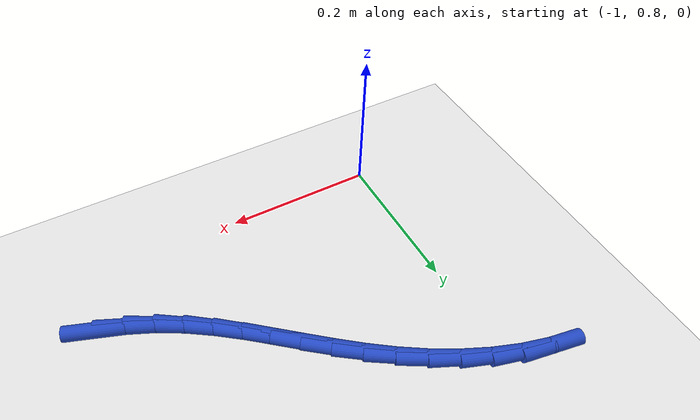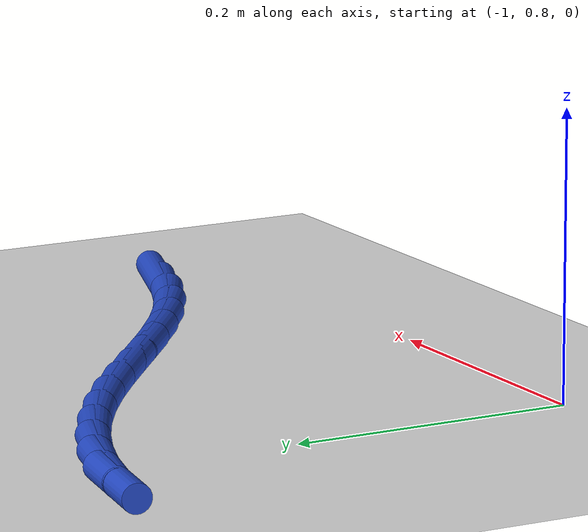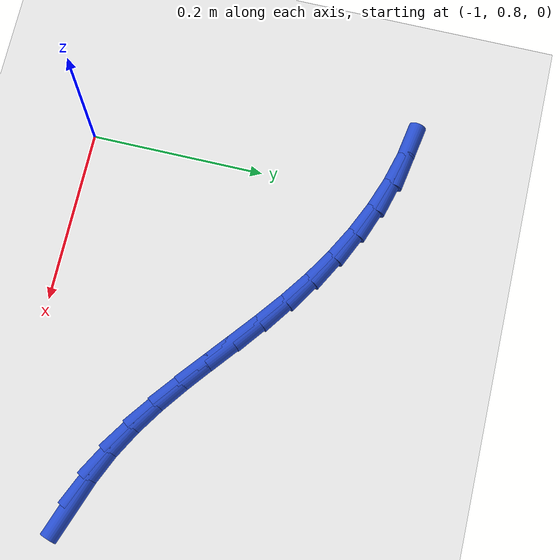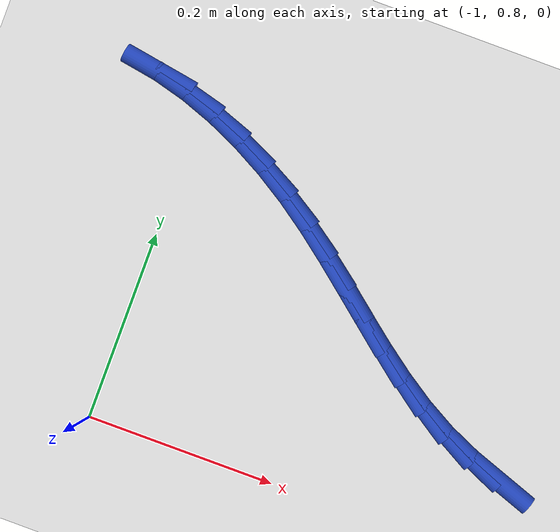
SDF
<sdf version="1.6">
 <world name="default">
  <model name="ground_plane">
   <static>1</static>
   <link name="link">
    <collision name="collision">
     <geometry><plane><normal>0 0 1</normal><size>100 100</size></plane></geometry>
     <surface><friction><ode><mu>100</mu><mu2>50</mu2></ode></friction></surface>
    </collision>
    <visual name="visual">
     <cast_shadows>0</cast_shadows>
     <geometry><plane><normal>0 0 1</normal><size>100 100</size></plane></geometry>
     <material>
      <script><uri>file://media/materials/scripts/gazebo.material</uri><name>Gazebo/WhiteGlow</name></script>
     </material>
    </visual>
   </link>
  </model>
  <model name="line">
   <link name="link_31">
    <pose>-0.5834036620481452 0.884380218958967 0.01 0 1.57 -0.3410018294471774</pose>
    <collision name="collision">
     <geometry><cylinder><radius>0.01</radius><length>0.08</length></cylinder></geometry>
    </collision>
    <visual name="visual">
     <material>
      <script><name>Gazebo/Blue</name><uri>file://media/materials/scripts/gazebo.material</uri></script>
     </material>
     <geometry><cylinder><radius>0.01</radius><length>0.08</length></cylinder></geometry>
    </visual>
   </link>
   <link name="link_32">
    <pose>-0.6176200955143327 0.8965224153548433 0.01 0 1.57 -0.4162373211990734</pose>
    <collision name="collision">
     <geometry><cylinder><radius>0.01</radius><length>0.08</length></cylinder></geometry>
    </collision>
    <visual name="visual">
     <material>
      <script><name>Gazebo/Blue</name><uri>file://media/materials/scripts/gazebo.material</uri></script>
     </material>
     <geometry><cylinder><radius>0.01</radius><length>0.08</length></cylinder></geometry>
    </visual>
   </link>
   <link name="link_33">
    <pose>-0.6504822890800623 0.9110497078930023 0.01 0 1.57 -0.5067972024959382</pose>
    <collision name="collision">
     <geometry><cylinder><radius>0.01</radius><length>0.08</length></cylinder></geometry>
    </collision>
    <visual name="visual">
     <material>
      <script><name>Gazebo/Blue</name><uri>file://media/materials/scripts/gazebo.material</uri></script>
     </material>
     <geometry><cylinder><radius>0.01</radius><length>0.08</length></cylinder></geometry>
    </visual>
   </link>
   <link name="link_34">
    <pose>-0.6817482751100935 0.9284073741318992 0.01 0 1.57 -0.5817306728456535</pose>
    <collision name="collision">
     <geometry><cylinder><radius>0.01</radius><length>0.08</length></cylinder></geometry>
    </collision>
    <visual name="visual">
     <material>
      <script><name>Gazebo/Blue</name><uri>file://media/materials/scripts/gazebo.material</uri></script>
     </material>
     <geometry><cylinder><radius>0.01</radius><length>0.08</length></cylinder></geometry>
    </visual>
   </link>
   <link name="link_35">
    <pose>-0.7117292156095959 0.9481241842259708 0.01 0 1.57 -0.6362292502062338</pose>
    <collision name="collision">
     <geometry><cylinder><radius>0.01</radius><length>0.08</length></cylinder></geometry>
    </collision>
    <visual name="visual">
     <material>
      <script><name>Gazebo/Blue</name><uri>file://media/materials/scripts/gazebo.material</uri></script>
     </material>
     <geometry><cylinder><radius>0.01</radius><length>0.08</length></cylinder></geometry>
    </visual>
   </link>
   <link name="link_36">
    <pose>-0.7408102549185683 0.9696063234007654 0.01 0 1.57 -0.6704707630069232</pose>
    <collision name="collision">
     <geometry><cylinder><radius>0.01</radius><length>0.08</length></cylinder></geometry>
    </collision>
    <visual name="visual">
     <material>
      <script><name>Gazebo/Blue</name><uri>file://media/materials/scripts/gazebo.material</uri></script>
     </material>
     <geometry><cylinder><radius>0.01</radius><length>0.08</length></cylinder></geometry>
    </visual>
   </link>
   <link name="link_37">
    <pose>-0.7693765373770087 0.9922599768818308 0.01 0 1.57 -0.6849915208966761</pose>
    <collision name="collision">
     <geometry><cylinder><radius>0.01</radius><length>0.08</length></cylinder></geometry>
    </collision>
    <visual name="visual">
     <material>
      <script><name>Gazebo/Blue</name><uri>file://media/materials/scripts/gazebo.material</uri></script>
     </material>
     <geometry><cylinder><radius>0.01</radius><length>0.08</length></cylinder></geometry>
    </visual>
   </link>
   <link name="link_38">
    <pose>-0.7978132073249158 1.0154913298947157 0.01 0 1.57 -0.6802730916885902</pose>
    <collision name="collision">
     <geometry><cylinder><radius>0.01</radius><length>0.08</length></cylinder></geometry>
    </collision>
    <visual name="visual">
     <material>
      <script><name>Gazebo/Blue</name><uri>file://media/materials/scripts/gazebo.material</uri></script>
     </material>
     <geometry><cylinder><radius>0.01</radius><length>0.08</length></cylinder></geometry>
    </visual>
   </link>
   <link name="link_39">
    <pose>-0.8265054091022879 1.0387065676649678 0.01 0 1.57 -0.6565850541841763</pose>
    <collision name="collision">
     <geometry><cylinder><radius>0.01</radius><length>0.08</length></cylinder></geometry>
    </collision>
    <visual name="visual">
     <material>
      <script><name>Gazebo/Blue</name><uri>file://media/materials/scripts/gazebo.material</uri></script>
     </material>
     <geometry><cylinder><radius>0.01</radius><length>0.08</length></cylinder></geometry>
    </visual>
   </link>
   <link name="link_40">
    <pose>-0.8558382870491233 1.0613118754181352 0.01 0 1.57 -0.6140563984420399</pose>
    <collision name="collision">
     <geometry><cylinder><radius>0.01</radius><length>0.08</length></cylinder></geometry>
    </collision>
    <visual name="visual">
     <material>
      <script><name>Gazebo/Blue</name><uri>file://media/materials/scripts/gazebo.material</uri></script>
     </material>
     <geometry><cylinder><radius>0.01</radius><length>0.08</length></cylinder></geometry>
    </visual>
   </link>
   <link name="link_41">
    <pose>-0.8861965393699092 1.0827136528040269 0.01 0 1.57 -0.5565749575749159</pose>
    <collision name="collision">
     <geometry><cylinder><radius>0.01</radius><length>0.08</length></cylinder></geometry>
    </collision>
    <visual name="visual">
     <material>
      <script><name>Gazebo/Blue</name><uri>file://media/materials/scripts/gazebo.material</uri></script>
     </material>
     <geometry><cylinder><radius>0.01</radius><length>0.08</length></cylinder></geometry>
    </visual>
   </link>
   <link name="link_42">
    <pose>-0.9178186587334778 1.102388569632608 0.01 0 1.57 -0.49279196026768884</pose>
    <collision name="collision">
     <geometry><cylinder><radius>0.01</radius><length>0.08</length></cylinder></geometry>
    </collision>
    <visual name="visual">
     <material>
      <script><name>Gazebo/Blue</name><uri>file://media/materials/scripts/gazebo.material</uri></script>
     </material>
     <geometry><cylinder><radius>0.01</radius><length>0.08</length></cylinder></geometry>
    </visual>
   </link>
   <link name="link_43">
    <pose>-0.9505869589691657 1.1199844844720832 0.01 0 1.57 -0.4229951830318679</pose>
    <collision name="collision">
     <geometry><cylinder><radius>0.01</radius><length>0.08</length></cylinder></geometry>
    </collision>
    <visual name="visual">
     <material>
      <script><name>Gazebo/Blue</name><uri>file://media/materials/scripts/gazebo.material</uri></script>
     </material>
     <geometry><cylinder><radius>0.01</radius><length>0.08</length></cylinder></geometry>
    </visual>
   </link>
   <link name="link_44">
    <pose>-0.9843305441219974 1.1351748298885822 0.01 0 1.57 -0.34609199628701415</pose>
    <collision name="collision">
     <geometry><cylinder><radius>0.01</radius><length>0.08</length></cylinder></geometry>
    </collision>
    <visual name="visual">
     <material>
      <script><name>Gazebo/Blue</name><uri>file://media/materials/scripts/gazebo.material</uri></script>
     </material>
     <geometry><cylinder><radius>0.01</radius><length>0.08</length></cylinder></geometry>
    </visual>
   </link>
   <link name="link_45">
    <pose>-1.0188785182369968 1.1476330384482352 0.01 0 1.57 -0.26107415201446316</pose>
    <collision name="collision">
     <geometry><cylinder><radius>0.01</radius><length>0.08</length></cylinder></geometry>
    </collision>
    <visual name="visual">
     <material>
      <script><name>Gazebo/Blue</name><uri>file://media/materials/scripts/gazebo.material</uri></script>
     </material>
     <geometry><cylinder><radius>0.01</radius><length>0.08</length></cylinder></geometry>
    </visual>
   </link>
   <link name="link_46">
    <pose>-1.0540599853591888 1.1570325427171713 0.01 0 1.57 -0.1671558325617049</pose>
    <collision name="collision">
     <geometry><cylinder><radius>0.01</radius><length>0.08</length></cylinder></geometry>
    </collision>
    <visual name="visual">
     <material>
      <script><name>Gazebo/Blue</name><uri>file://media/materials/scripts/gazebo.material</uri></script>
     </material>
     <geometry><cylinder><radius>0.01</radius><length>0.08</length></cylinder></geometry>
    </visual>
   </link>
  </model>
 </world>
</sdf>
